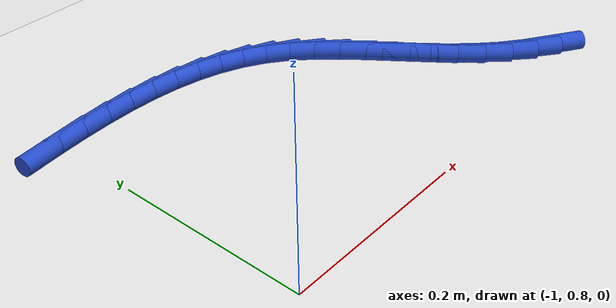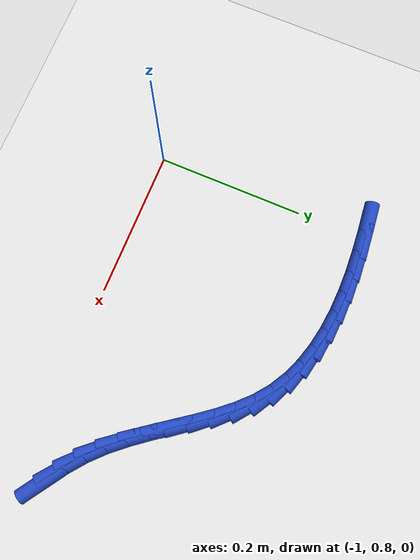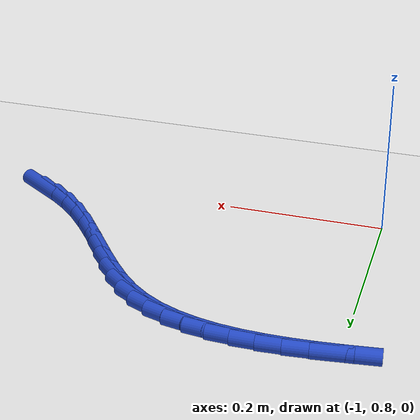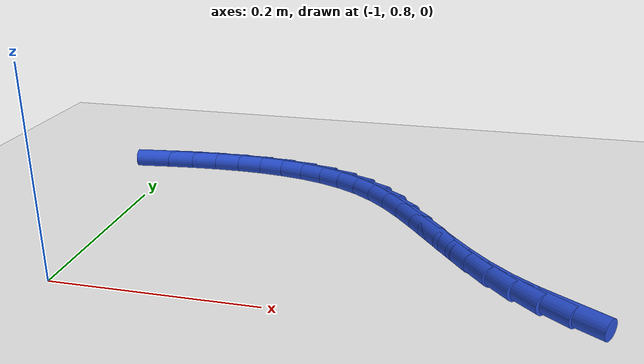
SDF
<sdf version="1.6">
 <world name="default">
  <model name="ground_plane">
   <static>1</static>
   <link name="link">
    <collision name="collision">
     <geometry><plane><normal>0 0 1</normal><size>100 100</size></plane></geometry>
     <surface><friction><ode><mu>100</mu><mu2>50</mu2></ode></friction></surface>
    </collision>
    <visual name="visual">
     <cast_shadows>0</cast_shadows>
     <geometry><plane><normal>0 0 1</normal><size>100 100</size></plane></geometry>
     <material>
      <script><uri>file://media/materials/scripts/gazebo.material</uri><name>Gazebo/WhiteGlow</name></script>
     </material>
    </visual>
   </link>
  </model>
  <model name="line">
   <link name="link_38">
    <pose>-0.5527472671099526 0.8357165687287116 0.01 0 1.57 -0.5848692271867266</pose>
    <collision name="collision">
     <geometry><cylinder><radius>0.01</radius><length>0.08</length></cylinder></geometry>
    </collision>
    <visual name="visual">
     <material>
      <script><name>Gazebo/Blue</name><uri>file://media/materials/scripts/gazebo.material</uri></script>
     </material>
     <geometry><cylinder><radius>0.01</radius><length>0.08</length></cylinder></geometry>
    </visual>
   </link>
   <link name="link_39">
    <pose>-0.5759053018490848 0.8510506637133854 0.01 0 1.57 -0.6685332507930792</pose>
    <collision name="collision">
     <geometry><cylinder><radius>0.01</radius><length>0.08</length></cylinder></geometry>
    </collision>
    <visual name="visual">
     <material>
      <script><name>Gazebo/Blue</name><uri>file://media/materials/scripts/gazebo.material</uri></script>
     </material>
     <geometry><cylinder><radius>0.01</radius><length>0.08</length></cylinder></geometry>
    </visual>
   </link>
   <link name="link_40">
    <pose>-0.5976936048593808 0.8682605811389517 0.01 0 1.57 -0.767831574314445</pose>
    <collision name="collision">
     <geometry><cylinder><radius>0.01</radius><length>0.08</length></cylinder></geometry>
    </collision>
    <visual name="visual">
     <material>
      <script><name>Gazebo/Blue</name><uri>file://media/materials/scripts/gazebo.material</uri></script>
     </material>
     <geometry><cylinder><radius>0.01</radius><length>0.08</length></cylinder></geometry>
    </visual>
   </link>
   <link name="link_41">
    <pose>-0.6178547880938314 0.8877255956304659 0.01 0 1.57 -0.8539294504244181</pose>
    <collision name="collision">
     <geometry><cylinder><radius>0.01</radius><length>0.08</length></cylinder></geometry>
    </collision>
    <visual name="visual">
     <material>
      <script><name>Gazebo/Blue</name><uri>file://media/materials/scripts/gazebo.material</uri></script>
     </material>
     <geometry><cylinder><radius>0.01</radius><length>0.08</length></cylinder></geometry>
    </visual>
   </link>
   <link name="link_42">
    <pose>-0.6365504148397132 0.9091768555166339 0.01 0 1.57 -0.9105657595181395</pose>
    <collision name="collision">
     <geometry><cylinder><radius>0.01</radius><length>0.08</length></cylinder></geometry>
    </collision>
    <visual name="visual">
     <material>
      <script><name>Gazebo/Blue</name><uri>file://media/materials/scripts/gazebo.material</uri></script>
     </material>
     <geometry><cylinder><radius>0.01</radius><length>0.08</length></cylinder></geometry>
    </visual>
   </link>
   <link name="link_43">
    <pose>-0.654213821748301 0.9319250701647842 0.01 0 1.57 -0.9395338326911635</pose>
    <collision name="collision">
     <geometry><cylinder><radius>0.01</radius><length>0.08</length></cylinder></geometry>
    </collision>
    <visual name="visual">
     <material>
      <script><name>Gazebo/Blue</name><uri>file://media/materials/scripts/gazebo.material</uri></script>
     </material>
     <geometry><cylinder><radius>0.01</radius><length>0.08</length></cylinder></geometry>
    </visual>
   </link>
   <link name="link_44">
    <pose>-0.6712829420856306 0.9552738378850482 0.01 0 1.57 -0.9419563553339502</pose>
    <collision name="collision">
     <geometry><cylinder><radius>0.01</radius><length>0.08</length></cylinder></geometry>
    </collision>
    <visual name="visual">
     <material>
      <script><name>Gazebo/Blue</name><uri>file://media/materials/scripts/gazebo.material</uri></script>
     </material>
     <geometry><cylinder><radius>0.01</radius><length>0.08</length></cylinder></geometry>
    </visual>
   </link>
   <link name="link_45">
    <pose>-0.688195709117738 0.9785267569875566 0.01 0 1.57 -0.9174290044999172</pose>
    <collision name="collision">
     <geometry><cylinder><radius>0.01</radius><length>0.08</length></cylinder></geometry>
    </collision>
    <visual name="visual">
     <material>
      <script><name>Gazebo/Blue</name><uri>file://media/materials/scripts/gazebo.material</uri></script>
     </material>
     <geometry><cylinder><radius>0.01</radius><length>0.08</length></cylinder></geometry>
    </visual>
   </link>
   <link name="link_46">
    <pose>-0.7053900561106593 1.0009874257824412 0.01 0 1.57 -0.8638810282687299</pose>
    <collision name="collision">
     <geometry><cylinder><radius>0.01</radius><length>0.08</length></cylinder></geometry>
    </collision>
    <visual name="visual">
     <material>
      <script><name>Gazebo/Blue</name><uri>file://media/materials/scripts/gazebo.material</uri></script>
     </material>
     <geometry><cylinder><radius>0.01</radius><length>0.08</length></cylinder></geometry>
    </visual>
   </link>
   <link name="link_47">
    <pose>-0.7233039163304303 1.0219594425798326 0.01 0 1.57 -0.777887565120833</pose>
    <collision name="collision">
     <geometry><cylinder><radius>0.01</radius><length>0.08</length></cylinder></geometry>
    </collision>
    <visual name="visual">
     <material>
      <script><name>Gazebo/Blue</name><uri>file://media/materials/scripts/gazebo.material</uri></script>
     </material>
     <geometry><cylinder><radius>0.01</radius><length>0.08</length></cylinder></geometry>
    </visual>
   </link>
   <link name="link_48">
    <pose>-0.7423752230430872 1.0407464056898625 0.01 0 1.57 -0.6568701441062793</pose>
    <collision name="collision">
     <geometry><cylinder><radius>0.01</radius><length>0.08</length></cylinder></geometry>
    </collision>
    <visual name="visual">
     <material>
      <script><name>Gazebo/Blue</name><uri>file://media/materials/scripts/gazebo.material</uri></script>
     </material>
     <geometry><cylinder><radius>0.01</radius><length>0.08</length></cylinder></geometry>
    </visual>
   </link>
   <link name="link_49">
    <pose>-0.7630289038564194 1.0566724994362238 0.01 0 1.57 -0.5213517329006125</pose>
    <collision name="collision">
     <geometry><cylinder><radius>0.01</radius><length>0.08</length></cylinder></geometry>
    </collision>
    <visual name="visual">
     <material>
      <script><name>Gazebo/Blue</name><uri>file://media/materials/scripts/gazebo.material</uri></script>
     </material>
     <geometry><cylinder><radius>0.01</radius><length>0.08</length></cylinder></geometry>
    </visual>
   </link>
   <link name="link_50">
    <pose>-0.7853996456039676 1.0695213159174348 0.01 0 1.57 -0.3959674449629047</pose>
    <collision name="collision">
     <geometry><cylinder><radius>0.01</radius><length>0.08</length></cylinder></geometry>
    </collision>
    <visual name="visual">
     <material>
      <script><name>Gazebo/Blue</name><uri>file://media/materials/scripts/gazebo.material</uri></script>
     </material>
     <geometry><cylinder><radius>0.01</radius><length>0.08</length></cylinder></geometry>
    </visual>
   </link>
   <link name="link_51">
    <pose>-0.8093367486322516 1.0795281713955316 0.01 0 1.57 -0.28481988546648906</pose>
    <collision name="collision">
     <geometry><cylinder><radius>0.01</radius><length>0.08</length></cylinder></geometry>
    </collision>
    <visual name="visual">
     <material>
      <script><name>Gazebo/Blue</name><uri>file://media/materials/scripts/gazebo.material</uri></script>
     </material>
     <geometry><cylinder><radius>0.01</radius><length>0.08</length></cylinder></geometry>
    </visual>
   </link>
   <link name="link_52">
    <pose>-0.8346774785735722 1.0869474312868068 0.01 0 1.57 -0.18905138566288446</pose>
    <collision name="collision">
     <geometry><cylinder><radius>0.01</radius><length>0.08</length></cylinder></geometry>
    </collision>
    <visual name="visual">
     <material>
      <script><name>Gazebo/Blue</name><uri>file://media/materials/scripts/gazebo.material</uri></script>
     </material>
     <geometry><cylinder><radius>0.01</radius><length>0.08</length></cylinder></geometry>
    </visual>
   </link>
   <link name="link_53">
    <pose>-0.8612591010602298 1.0920334610075533 0.01 0 1.57 -0.10829442609271123</pose>
    <collision name="collision">
     <geometry><cylinder><radius>0.01</radius><length>0.08</length></cylinder></geometry>
    </collision>
    <visual name="visual">
     <material>
      <script><name>Gazebo/Blue</name><uri>file://media/materials/scripts/gazebo.material</uri></script>
     </material>
     <geometry><cylinder><radius>0.01</radius><length>0.08</length></cylinder></geometry>
    </visual>
   </link>
   <link name="link_54">
    <pose>-0.8889188817245257 1.095040625974064 0.01 0 1.57 -0.04136421979315932</pose>
    <collision name="collision">
     <geometry><cylinder><radius>0.01</radius><length>0.08</length></cylinder></geometry>
    </collision>
    <visual name="visual">
     <material>
      <script><name>Gazebo/Blue</name><uri>file://media/materials/scripts/gazebo.material</uri></script>
     </material>
     <geometry><cylinder><radius>0.01</radius><length>0.08</length></cylinder></geometry>
    </visual>
   </link>
   <link name="link_55">
    <pose>-0.9174940861987597 1.096223291602632 0.01 0 1.57 0.013210827645202894</pose>
    <collision name="collision">
     <geometry><cylinder><radius>0.01</radius><length>0.08</length></cylinder></geometry>
    </collision>
    <visual name="visual">
     <material>
      <script><name>Gazebo/Blue</name><uri>file://media/materials/scripts/gazebo.material</uri></script>
     </material>
     <geometry><cylinder><radius>0.01</radius><length>0.08</length></cylinder></geometry>
    </visual>
   </link>
   <link name="link_56">
    <pose>-0.9468219801152331 1.0958358233095495 0.01 0 1.57 0.05686907043063197</pose>
    <collision name="collision">
     <geometry><cylinder><radius>0.01</radius><length>0.08</length></cylinder></geometry>
    </collision>
    <visual name="visual">
     <material>
      <script><name>Gazebo/Blue</name><uri>file://media/materials/scripts/gazebo.material</uri></script>
     </material>
     <geometry><cylinder><radius>0.01</radius><length>0.08</length></cylinder></geometry>
    </visual>
   </link>
   <link name="link_57">
    <pose>-0.9767398291062461 1.0941325865111104 0.01 0 1.57 0.09085589678049677</pose>
    <collision name="collision">
     <geometry><cylinder><radius>0.01</radius><length>0.08</length></cylinder></geometry>
    </collision>
    <visual name="visual">
     <material>
      <script><name>Gazebo/Blue</name><uri>file://media/materials/scripts/gazebo.material</uri></script>
     </material>
     <geometry><cylinder><radius>0.01</radius><length>0.08</length></cylinder></geometry>
    </visual>
   </link>
   <link name="link_58">
    <pose>-1.0070848988040995 1.091367946623606 0.01 0 1.57 0.1161597627894585</pose>
    <collision name="collision">
     <geometry><cylinder><radius>0.01</radius><length>0.08</length></cylinder></geometry>
    </collision>
    <visual name="visual">
     <material>
      <script><name>Gazebo/Blue</name><uri>file://media/materials/scripts/gazebo.material</uri></script>
     </material>
     <geometry><cylinder><radius>0.01</radius><length>0.08</length></cylinder></geometry>
    </visual>
   </link>
  </model>
 </world>
</sdf>
